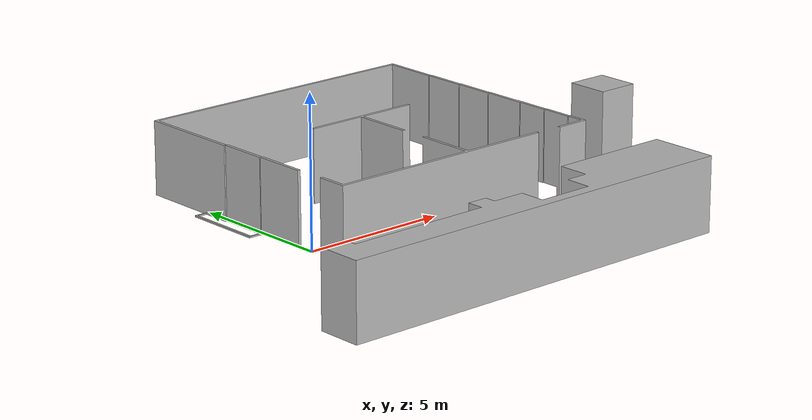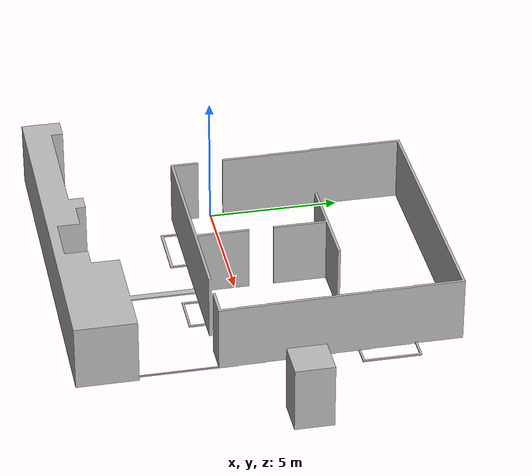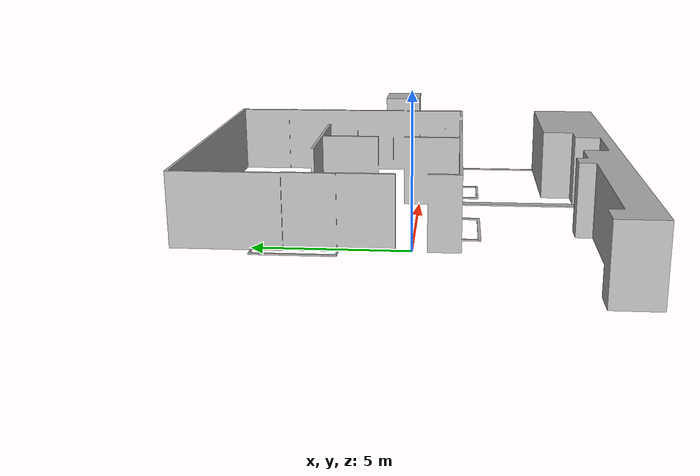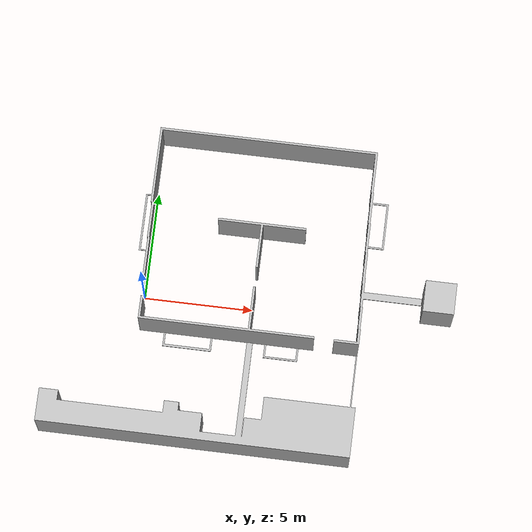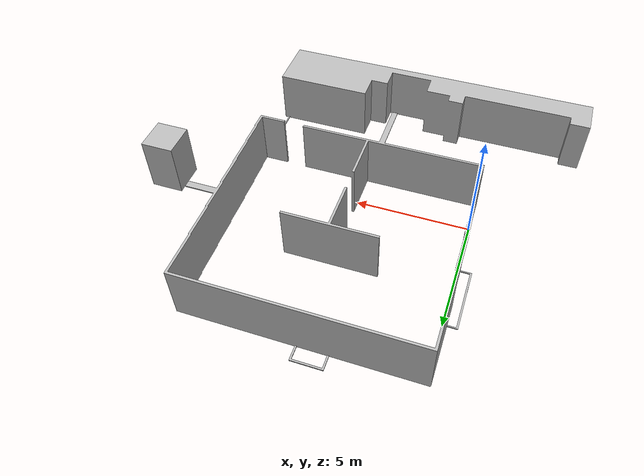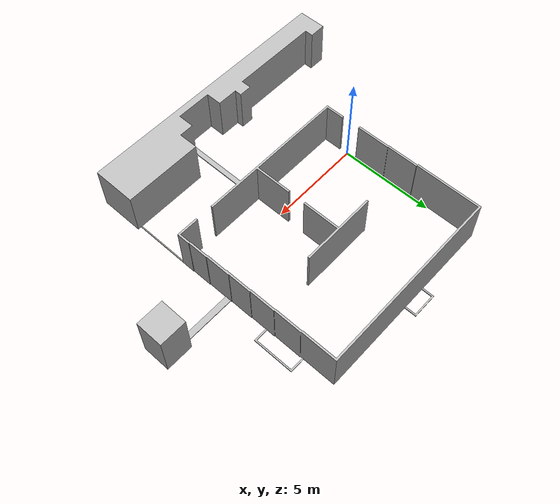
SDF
<?xml version="1.0"?>
<sdf version="1.6">
  <model name="rgo2017/walls">
    <link name="1_link">
      <collision name="1_col">
        <geometry>
          <mesh>
            <uri>model://rgo2017/walls/rgo2017largecleaned.stl</uri>
          </mesh>
        </geometry>
      </collision>
      <visual name="1_vis">
        <geometry>
          <mesh>
            <uri>model://rgo2017/walls/rgo2017largecleaned.stl</uri>
          </mesh>
        </geometry>
      </visual>
      <pose>0 0 0 0 0 0</pose>
    </link>
    <static>true</static>
  </model>
</sdf>
